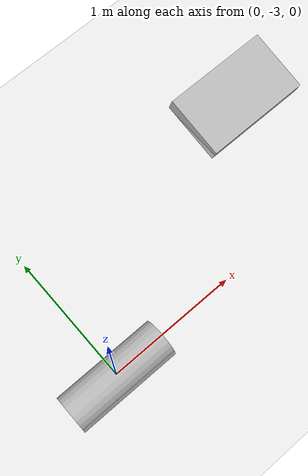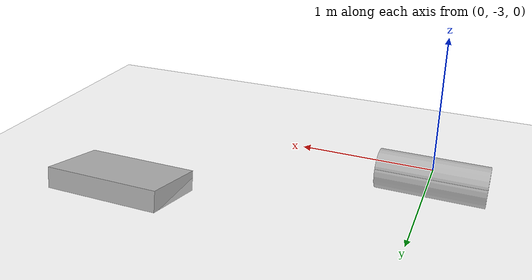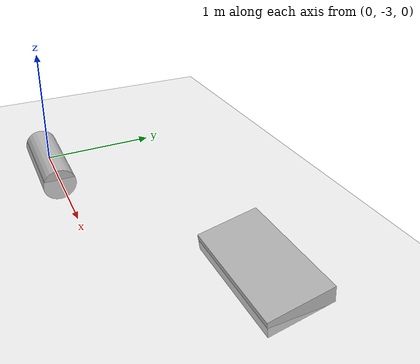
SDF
<?xml version="1.0" ?>
<sdf version="1.6">
    <world name="default">
        <physics type='ode'>
          <max_step_size>0.001</max_step_size>
          <real_time_factor>1</real_time_factor>
          <real_time_update_rate>1000</real_time_update_rate>
          <gravity>0 0 -9.8</gravity>
        </physics>

        <include>
            <uri>model://sun</uri>
        </include>

        <include>
            <uri>model://ground_plane</uri>
        </include>

        <model name="cylinder_obstacle">
            <static>true</static>
            <pose>0 -3 -0.06 0 0 0</pose>
            <link name="cylinder">
                <collision name="cylinder_collision">
                    <pose frame="">0 0 0 0 1.570796327 0</pose>
                    <geometry>
                        <cylinder>
                            <radius>0.15</radius>
                            <length>0.8</length>
                        </cylinder>
                    </geometry>
                    <surface>
                        <friction>
                            <ode>
                                <mu>1</mu>
                            </ode>
                        </friction>
                    </surface>
                </collision>
                <visual name="cylinder_visual">
                    <pose frame="">0 0 0 0 1.570796327 0</pose>
                    <geometry>
                        <cylinder>
                            <radius>0.15</radius>
                            <length>0.8</length>
                        </cylinder>
                    </geometry>
                </visual>
            </link>
        </model>

        <model name="box_obstacle">
            <static>true</static>
            <pose>2 -2 0.028 1.7821 0 0</pose>
            <link name="box">
                <collision name="box_collision">
                    <pose frame="">0 0 0 0 0 0</pose>
                    <geometry>
                        <box>
                            <size>0.85 0.15 0.50</size>
                        </box>
                    </geometry>
                    <surface>
                        <friction>
                            <ode>
                                <mu>1</mu>
                            </ode>
                        </friction>
                    </surface>
                </collision>
                <visual name="box_visual">
                    <pose frame="">0 0 0 0 0 0</pose>
                    <geometry>
                        <box>
                            <size>0.85 0.15 0.50</size>
                        </box>
                    </geometry>
                </visual>
            </link>
        </model>
    </world>
</sdf>
